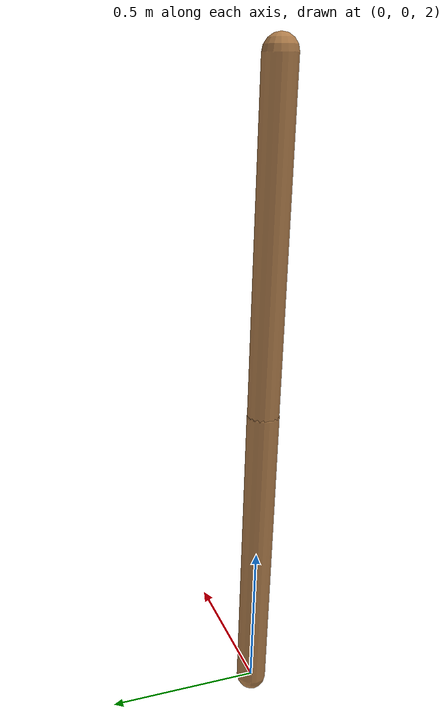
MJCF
<mujoco model="acrobot">
<!-- Copyright (c) 2024 Robotics and AI Institute LLC dba RAI Institute. All rights reserved. -->

  <asset>
    <texture name="blue_grid" type="2d" builtin="checker" rgb1=".02 .14 .44" rgb2=".27 .55 1" width="300" height="300" mark="edge" markrgb="1 1 1"/>
    <material name="blue_grid" texture="blue_grid" texrepeat="1 1" texuniform="true" reflectance=".2"/>
    <material name="beige" rgba=".7 .5 .3 1"/>
  </asset>

  <option timestep="0.03">
    <flag contact="disable"/>
  </option>

  <worldbody>
    <body name="thigh" pos="0 0 2">
      <joint name="hip" type="hinge" damping="0.1" axis="0 1 0"/>
      <geom name="thigh" fromto="0 0 0 0 0 1" type="capsule" size="0.05" material="beige" mass="1"/>
      <site name="trace_thigh" pos="0 0 1" size="0.01"/>
      <body name="calf" pos="0 0 1">
        <joint name="knee" type="hinge" damping="0.1" axis="0 1 0"/>
        <geom name="calf" fromto="0 0 0 0 0 1" type="capsule" size="0.049" material="beige" mass="1"/>
        <site name="trace_calf" pos="0 0 1" size="0.01"/>
      </body>
    </body>
  </worldbody>

  <actuator>
    <!-- Fixed the hip actuator -->
    <motor name="knee" joint="knee" gear="3" ctrllimited="true" ctrlrange="-1 1"/>
  </actuator>

  <sensor>
    <framepos name="trace_thigh" objtype="site" objname="trace_thigh" />
    <framepos name="trace_calf" objtype="site" objname="trace_calf" />
  </sensor>

</mujoco>
